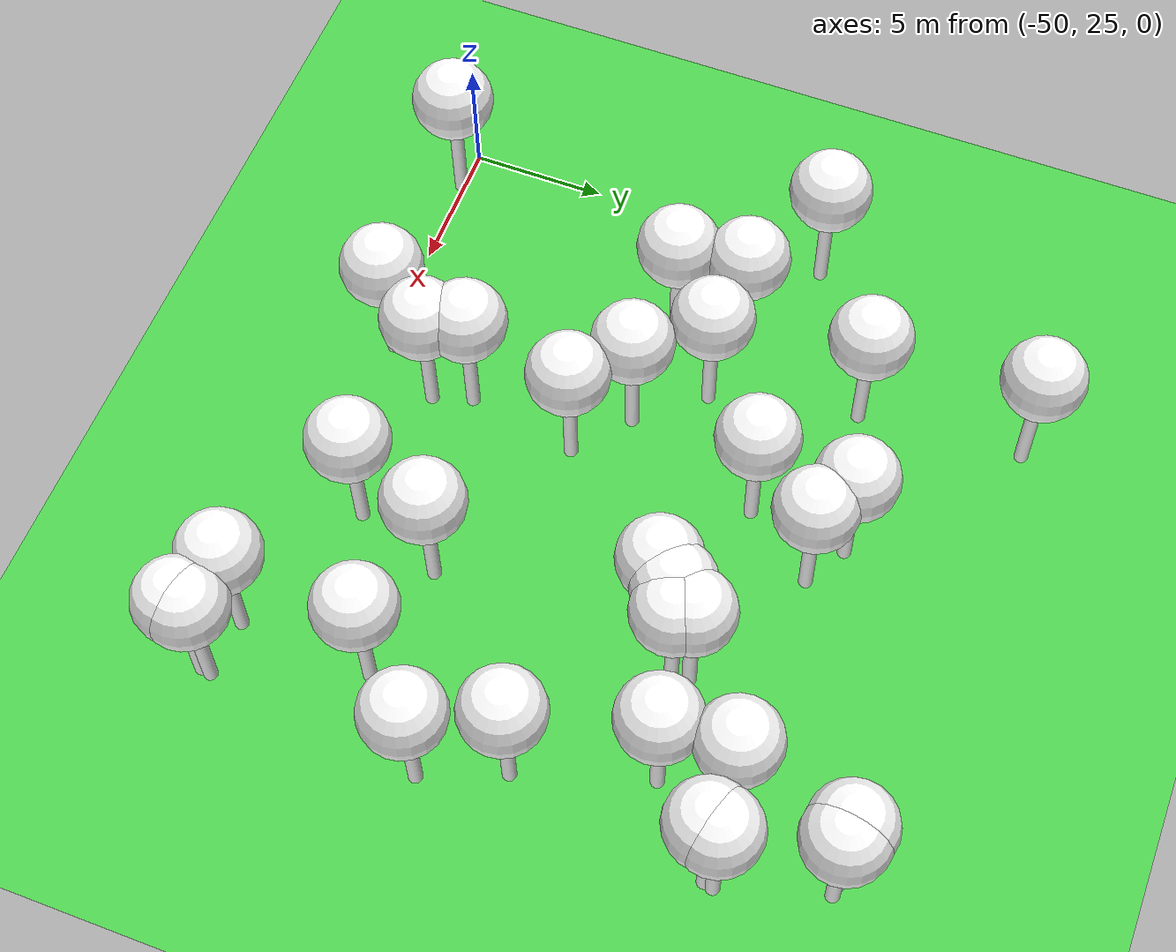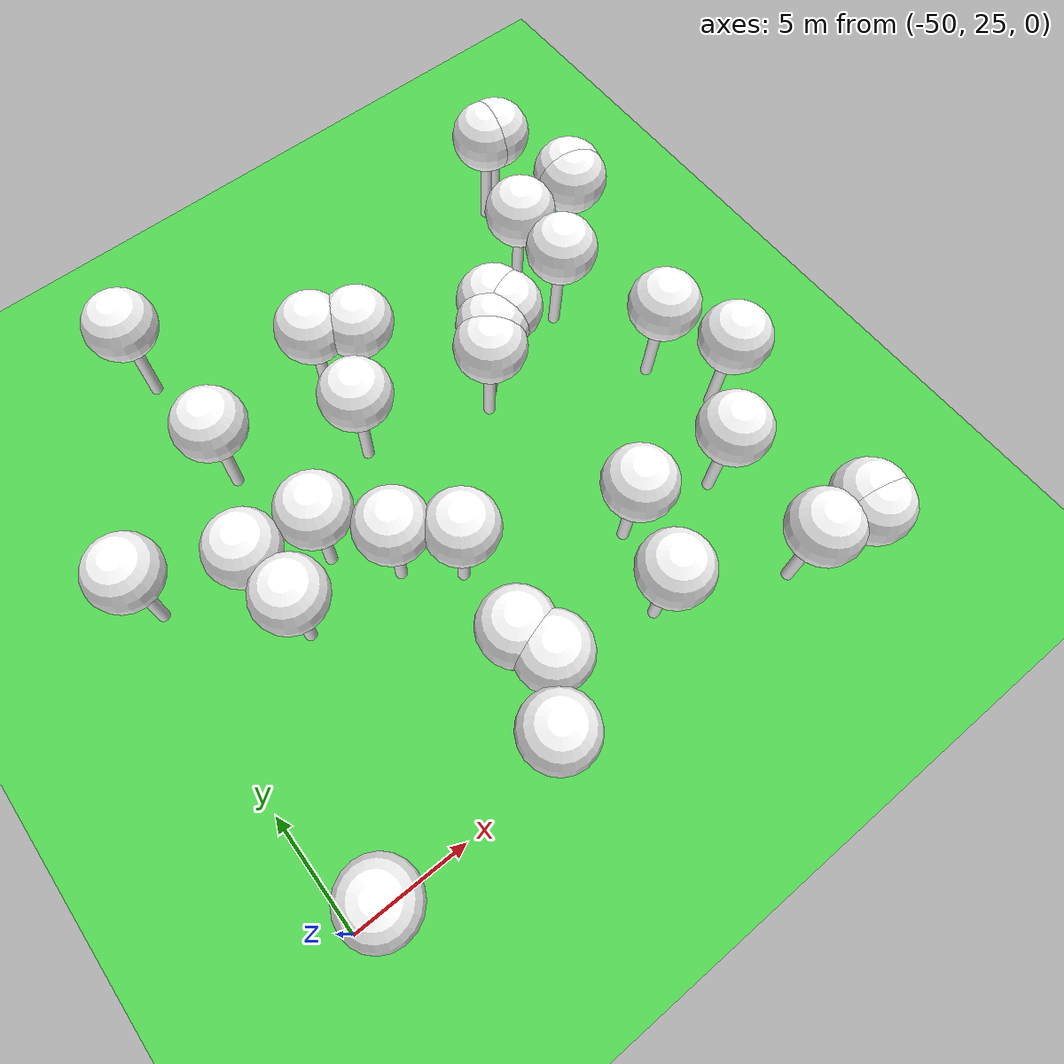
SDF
<sdf version="1.8">
 <world name="forest_world">
  <model name="tree_simple489">
   <static>1</static>
   <link name="link">
    <pose>0 0 0.1 0 -0 0</pose>
    <collision name="collision_trunk">
     <pose>0 0 2 0 -0 0</pose>
     <geometry><cylinder><radius>0.25</radius><length>4</length></cylinder></geometry>
    </collision>
    <collision name="collision_treetop">
     <pose>0 0 5.2 0 -0 0</pose>
     <geometry><sphere><radius>1.5</radius></sphere></geometry>
    </collision>
    <visual name="trunk_489">
     <pose>0 0 2 0 -0 0</pose>
     <geometry><cylinder><radius>0.25</radius><length>4</length></cylinder></geometry>
     <material>
      <ambient>0.5 0.5 0.5 1</ambient>
      <diffuse>1.0 1.0 1.0 1</diffuse>
      <specular>0.0 0.0 0.0 1</specular>
      <pbr>
       <metal>
        <albedo_map>file://textures/tree_simple_trunk.jpg</albedo_map>
        <metalness>0.0</metalness>
        <roughness>0.8</roughness>
       </metal>
      </pbr>
     </material>
    </visual>
    <visual name="treetop_489">
     <pose>0 0 5.2 0 -0 0</pose>
     <geometry><sphere><radius>1.5</radius></sphere></geometry>
     <material>
      <ambient>0.5 0.5 0.5 1</ambient>
      <diffuse>1.0 1.0 1.0 1</diffuse>
      <specular>0.0 0.0 0.0 1</specular>
      <pbr>
       <metal>
        <albedo_map>file://textures/tree_simple_treetop.jpg</albedo_map>
        <metalness>0.0</metalness>
        <roughness>0.9</roughness>
       </metal>
      </pbr>
     </material>
    </visual>
   </link>
   <pose>-32.6634579524 39.3278172931 0 0 -0 0</pose>
  </model>
  <model name="tree_simple482">
   <static>1</static>
   <link name="link">
    <pose>0 0 0.1 0 -0 0</pose>
    <collision name="collision_trunk">
     <pose>0 0 2 0 -0 0</pose>
     <geometry><cylinder><radius>0.25</radius><length>4</length></cylinder></geometry>
    </collision>
    <collision name="collision_treetop">
     <pose>0 0 5.2 0 -0 0</pose>
     <geometry><sphere><radius>1.5</radius></sphere></geometry>
    </collision>
    <visual name="trunk_482">
     <pose>0 0 2 0 -0 0</pose>
     <geometry><cylinder><radius>0.25</radius><length>4</length></cylinder></geometry>
     <material>
      <ambient>0.5 0.5 0.5 1</ambient>
      <diffuse>1.0 1.0 1.0 1</diffuse>
      <specular>0.0 0.0 0.0 1</specular>
      <pbr>
       <metal>
        <albedo_map>file://textures/tree_simple_trunk.jpg</albedo_map>
        <metalness>0.0</metalness>
        <roughness>0.8</roughness>
       </metal>
      </pbr>
     </material>
    </visual>
    <visual name="treetop_482">
     <pose>0 0 5.2 0 -0 0</pose>
     <geometry><sphere><radius>1.5</radius></sphere></geometry>
     <material>
      <ambient>0.5 0.5 0.5 1</ambient>
      <diffuse>1.0 1.0 1.0 1</diffuse>
      <specular>0.0 0.0 0.0 1</specular>
      <pbr>
       <metal>
        <albedo_map>file://textures/tree_simple_treetop.jpg</albedo_map>
        <metalness>0.0</metalness>
        <roughness>0.9</roughness>
       </metal>
      </pbr>
     </material>
    </visual>
   </link>
   <pose>-31.7137183406 39.6850484597 0 0 -0 0</pose>
  </model>
  <model name="tree_simple474">
   <static>1</static>
   <link name="link">
    <pose>0 0 0.1 0 -0 0</pose>
    <collision name="collision_trunk">
     <pose>0 0 2 0 -0 0</pose>
     <geometry><cylinder><radius>0.25</radius><length>4</length></cylinder></geometry>
    </collision>
    <collision name="collision_treetop">
     <pose>0 0 5.2 0 -0 0</pose>
     <geometry><sphere><radius>1.5</radius></sphere></geometry>
    </collision>
    <visual name="trunk_474">
     <pose>0 0 2 0 -0 0</pose>
     <geometry><cylinder><radius>0.25</radius><length>4</length></cylinder></geometry>
     <material>
      <ambient>0.5 0.5 0.5 1</ambient>
      <diffuse>1.0 1.0 1.0 1</diffuse>
      <specular>0.0 0.0 0.0 1</specular>
      <pbr>
       <metal>
        <albedo_map>file://textures/tree_simple_trunk.jpg</albedo_map>
        <metalness>0.0</metalness>
        <roughness>0.8</roughness>
       </metal>
      </pbr>
     </material>
    </visual>
    <visual name="treetop_474">
     <pose>0 0 5.2 0 -0 0</pose>
     <geometry><sphere><radius>1.5</radius></sphere></geometry>
     <material>
      <ambient>0.5 0.5 0.5 1</ambient>
      <diffuse>1.0 1.0 1.0 1</diffuse>
      <specular>0.0 0.0 0.0 1</specular>
      <pbr>
       <metal>
        <albedo_map>file://textures/tree_simple_treetop.jpg</albedo_map>
        <metalness>0.0</metalness>
        <roughness>0.9</roughness>
       </metal>
      </pbr>
     </material>
    </visual>
   </link>
   <pose>-45.5609359524 37.3889677829 0 0 -0 0</pose>
  </model>
  <model name="tree_simple462">
   <static>1</static>
   <link name="link">
    <pose>0 0 0.1 0 -0 0</pose>
    <collision name="collision_trunk">
     <pose>0 0 2 0 -0 0</pose>
     <geometry><cylinder><radius>0.25</radius><length>4</length></cylinder></geometry>
    </collision>
    <collision name="collision_treetop">
     <pose>0 0 5.2 0 -0 0</pose>
     <geometry><sphere><radius>1.5</radius></sphere></geometry>
    </collision>
    <visual name="trunk_462">
     <pose>0 0 2 0 -0 0</pose>
     <geometry><cylinder><radius>0.25</radius><length>4</length></cylinder></geometry>
     <material>
      <ambient>0.5 0.5 0.5 1</ambient>
      <diffuse>1.0 1.0 1.0 1</diffuse>
      <specular>0.0 0.0 0.0 1</specular>
      <pbr>
       <metal>
        <albedo_map>file://textures/tree_simple_trunk.jpg</albedo_map>
        <metalness>0.0</metalness>
        <roughness>0.8</roughness>
       </metal>
      </pbr>
     </material>
    </visual>
    <visual name="treetop_462">
     <pose>0 0 5.2 0 -0 0</pose>
     <geometry><sphere><radius>1.5</radius></sphere></geometry>
     <material>
      <ambient>0.5 0.5 0.5 1</ambient>
      <diffuse>1.0 1.0 1.0 1</diffuse>
      <specular>0.0 0.0 0.0 1</specular>
      <pbr>
       <metal>
        <albedo_map>file://textures/tree_simple_treetop.jpg</albedo_map>
        <metalness>0.0</metalness>
        <roughness>0.9</roughness>
       </metal>
      </pbr>
     </material>
    </visual>
   </link>
   <pose>-33.3479265171 38.6010387018 0 0 -0 0</pose>
  </model>
  <model name="tree_simple441">
   <static>1</static>
   <link name="link">
    <pose>0 0 0.1 0 -0 0</pose>
    <collision name="collision_trunk">
     <pose>0 0 2 0 -0 0</pose>
     <geometry><cylinder><radius>0.25</radius><length>4</length></cylinder></geometry>
    </collision>
    <collision name="collision_treetop">
     <pose>0 0 5.2 0 -0 0</pose>
     <geometry><sphere><radius>1.5</radius></sphere></geometry>
    </collision>
    <visual name="trunk_441">
     <pose>0 0 2 0 -0 0</pose>
     <geometry><cylinder><radius>0.25</radius><length>4</length></cylinder></geometry>
     <material>
      <ambient>0.5 0.5 0.5 1</ambient>
      <diffuse>1.0 1.0 1.0 1</diffuse>
      <specular>0.0 0.0 0.0 1</specular>
      <pbr>
       <metal>
        <albedo_map>file://textures/tree_simple_trunk.jpg</albedo_map>
        <metalness>0.0</metalness>
        <roughness>0.8</roughness>
       </metal>
      </pbr>
     </material>
    </visual>
    <visual name="treetop_441">
     <pose>0 0 5.2 0 -0 0</pose>
     <geometry><sphere><radius>1.5</radius></sphere></geometry>
     <material>
      <ambient>0.5 0.5 0.5 1</ambient>
      <diffuse>1.0 1.0 1.0 1</diffuse>
      <specular>0.0 0.0 0.0 1</specular>
      <pbr>
       <metal>
        <albedo_map>file://textures/tree_simple_treetop.jpg</albedo_map>
        <metalness>0.0</metalness>
        <roughness>0.9</roughness>
       </metal>
      </pbr>
     </material>
    </visual>
   </link>
   <pose>-25.4258718868 33.0017159702 0 0 -0 0</pose>
  </model>
  <model name="tree_simple410">
   <static>1</static>
   <link name="link">
    <pose>0 0 0.1 0 -0 0</pose>
    <collision name="collision_trunk">
     <pose>0 0 2 0 -0 0</pose>
     <geometry><cylinder><radius>0.25</radius><length>4</length></cylinder></geometry>
    </collision>
    <collision name="collision_treetop">
     <pose>0 0 5.2 0 -0 0</pose>
     <geometry><sphere><radius>1.5</radius></sphere></geometry>
    </collision>
    <visual name="trunk_410">
     <pose>0 0 2 0 -0 0</pose>
     <geometry><cylinder><radius>0.25</radius><length>4</length></cylinder></geometry>
     <material>
      <ambient>0.5 0.5 0.5 1</ambient>
      <diffuse>1.0 1.0 1.0 1</diffuse>
      <specular>0.0 0.0 0.0 1</specular>
      <pbr>
       <metal>
        <albedo_map>file://textures/tree_simple_trunk.jpg</albedo_map>
        <metalness>0.0</metalness>
        <roughness>0.8</roughness>
       </metal>
      </pbr>
     </material>
    </visual>
    <visual name="treetop_410">
     <pose>0 0 5.2 0 -0 0</pose>
     <geometry><sphere><radius>1.5</radius></sphere></geometry>
     <material>
      <ambient>0.5 0.5 0.5 1</ambient>
      <diffuse>1.0 1.0 1.0 1</diffuse>
      <specular>0.0 0.0 0.0 1</specular>
      <pbr>
       <metal>
        <albedo_map>file://textures/tree_simple_treetop.jpg</albedo_map>
        <metalness>0.0</metalness>
        <roughness>0.9</roughness>
       </metal>
      </pbr>
     </material>
    </visual>
   </link>
   <pose>-31.9347087499 40.2537422087 0 0 -0 0</pose>
  </model>
  <model name="tree_simple358">
   <static>1</static>
   <link name="link">
    <pose>0 0 0.1 0 -0 0</pose>
    <collision name="collision_trunk">
     <pose>0 0 2 0 -0 0</pose>
     <geometry><cylinder><radius>0.25</radius><length>4</length></cylinder></geometry>
    </collision>
    <collision name="collision_treetop">
     <pose>0 0 5.2 0 -0 0</pose>
     <geometry><sphere><radius>1.5</radius></sphere></geometry>
    </collision>
    <visual name="trunk_358">
     <pose>0 0 2 0 -0 0</pose>
     <geometry><cylinder><radius>0.25</radius><length>4</length></cylinder></geometry>
     <material>
      <ambient>0.5 0.5 0.5 1</ambient>
      <diffuse>1.0 1.0 1.0 1</diffuse>
      <specular>0.0 0.0 0.0 1</specular>
      <pbr>
       <metal>
        <albedo_map>file://textures/tree_simple_trunk.jpg</albedo_map>
        <metalness>0.0</metalness>
        <roughness>0.8</roughness>
       </metal>
      </pbr>
     </material>
    </visual>
    <visual name="treetop_358">
     <pose>0 0 5.2 0 -0 0</pose>
     <geometry><sphere><radius>1.5</radius></sphere></geometry>
     <material>
      <ambient>0.5 0.5 0.5 1</ambient>
      <diffuse>1.0 1.0 1.0 1</diffuse>
      <specular>0.0 0.0 0.0 1</specular>
      <pbr>
       <metal>
        <albedo_map>file://textures/tree_simple_treetop.jpg</albedo_map>
        <metalness>0.0</metalness>
        <roughness>0.9</roughness>
       </metal>
      </pbr>
     </material>
    </visual>
   </link>
   <pose>-28.1059387966 40.529489556 0 0 -0 0</pose>
  </model>
  <model name="tree_simple351">
   <static>1</static>
   <link name="link">
    <pose>0 0 0.1 0 -0 0</pose>
    <collision name="collision_trunk">
     <pose>0 0 2 0 -0 0</pose>
     <geometry><cylinder><radius>0.25</radius><length>4</length></cylinder></geometry>
    </collision>
    <collision name="collision_treetop">
     <pose>0 0 5.2 0 -0 0</pose>
     <geometry><sphere><radius>1.5</radius></sphere></geometry>
    </collision>
    <visual name="trunk_351">
     <pose>0 0 2 0 -0 0</pose>
     <geometry><cylinder><radius>0.25</radius><length>4</length></cylinder></geometry>
     <material>
      <ambient>0.5 0.5 0.5 1</ambient>
      <diffuse>1.0 1.0 1.0 1</diffuse>
      <specular>0.0 0.0 0.0 1</specular>
      <pbr>
       <metal>
        <albedo_map>file://textures/tree_simple_trunk.jpg</albedo_map>
        <metalness>0.0</metalness>
        <roughness>0.8</roughness>
       </metal>
      </pbr>
     </material>
    </visual>
    <visual name="treetop_351">
     <pose>0 0 5.2 0 -0 0</pose>
     <geometry><sphere><radius>1.5</radius></sphere></geometry>
     <material>
      <ambient>0.5 0.5 0.5 1</ambient>
      <diffuse>1.0 1.0 1.0 1</diffuse>
      <specular>0.0 0.0 0.0 1</specular>
      <pbr>
       <metal>
        <albedo_map>file://textures/tree_simple_treetop.jpg</albedo_map>
        <metalness>0.0</metalness>
        <roughness>0.9</roughness>
       </metal>
      </pbr>
     </material>
    </visual>
   </link>
   <pose>-28.4628783032 25.1782097003 0 0 -0 0</pose>
  </model>
  <model name="tree_simple336">
   <static>1</static>
   <link name="link">
    <pose>0 0 0.1 0 -0 0</pose>
    <collision name="collision_trunk">
     <pose>0 0 2 0 -0 0</pose>
     <geometry><cylinder><radius>0.25</radius><length>4</length></cylinder></geometry>
    </collision>
    <collision name="collision_treetop">
     <pose>0 0 5.2 0 -0 0</pose>
     <geometry><sphere><radius>1.5</radius></sphere></geometry>
    </collision>
    <visual name="trunk_336">
     <pose>0 0 2 0 -0 0</pose>
     <geometry><cylinder><radius>0.25</radius><length>4</length></cylinder></geometry>
     <material>
      <ambient>0.5 0.5 0.5 1</ambient>
      <diffuse>1.0 1.0 1.0 1</diffuse>
      <specular>0.0 0.0 0.0 1</specular>
      <pbr>
       <metal>
        <albedo_map>file://textures/tree_simple_trunk.jpg</albedo_map>
        <metalness>0.0</metalness>
        <roughness>0.8</roughness>
       </metal>
      </pbr>
     </material>
    </visual>
    <visual name="treetop_336">
     <pose>0 0 5.2 0 -0 0</pose>
     <geometry><sphere><radius>1.5</radius></sphere></geometry>
     <material>
      <ambient>0.5 0.5 0.5 1</ambient>
      <diffuse>1.0 1.0 1.0 1</diffuse>
      <specular>0.0 0.0 0.0 1</specular>
      <pbr>
       <metal>
        <albedo_map>file://textures/tree_simple_treetop.jpg</albedo_map>
        <metalness>0.0</metalness>
        <roughness>0.9</roughness>
       </metal>
      </pbr>
     </material>
    </visual>
   </link>
   <pose>-43.9020074738 42.4187815875 0 0 -0 0</pose>
  </model>
  <model name="tree_simple331">
   <static>1</static>
   <link name="link">
    <pose>0 0 0.1 0 -0 0</pose>
    <collision name="collision_trunk">
     <pose>0 0 2 0 -0 0</pose>
     <geometry><cylinder><radius>0.25</radius><length>4</length></cylinder></geometry>
    </collision>
    <collision name="collision_treetop">
     <pose>0 0 5.2 0 -0 0</pose>
     <geometry><sphere><radius>1.5</radius></sphere></geometry>
    </collision>
    <visual name="trunk_331">
     <pose>0 0 2 0 -0 0</pose>
     <geometry><cylinder><radius>0.25</radius><length>4</length></cylinder></geometry>
     <material>
      <ambient>0.5 0.5 0.5 1</ambient>
      <diffuse>1.0 1.0 1.0 1</diffuse>
      <specular>0.0 0.0 0.0 1</specular>
      <pbr>
       <metal>
        <albedo_map>file://textures/tree_simple_trunk.jpg</albedo_map>
        <metalness>0.0</metalness>
        <roughness>0.8</roughness>
       </metal>
      </pbr>
     </material>
    </visual>
    <visual name="treetop_331">
     <pose>0 0 5.2 0 -0 0</pose>
     <geometry><sphere><radius>1.5</radius></sphere></geometry>
     <material>
      <ambient>0.5 0.5 0.5 1</ambient>
      <diffuse>1.0 1.0 1.0 1</diffuse>
      <specular>0.0 0.0 0.0 1</specular>
      <pbr>
       <metal>
        <albedo_map>file://textures/tree_simple_treetop.jpg</albedo_map>
        <metalness>0.0</metalness>
        <roughness>0.9</roughness>
       </metal>
      </pbr>
     </material>
    </visual>
   </link>
   <pose>-40.8341940448 34.8238319948 0 0 -0 0</pose>
  </model>
  <model name="tree_simple319">
   <static>1</static>
   <link name="link">
    <pose>0 0 0.1 0 -0 0</pose>
    <collision name="collision_trunk">
     <pose>0 0 2 0 -0 0</pose>
     <geometry><cylinder><radius>0.25</radius><length>4</length></cylinder></geometry>
    </collision>
    <collision name="collision_treetop">
     <pose>0 0 5.2 0 -0 0</pose>
     <geometry><sphere><radius>1.5</radius></sphere></geometry>
    </collision>
    <visual name="trunk_319">
     <pose>0 0 2 0 -0 0</pose>
     <geometry><cylinder><radius>0.25</radius><length>4</length></cylinder></geometry>
     <material>
      <ambient>0.5 0.5 0.5 1</ambient>
      <diffuse>1.0 1.0 1.0 1</diffuse>
      <specular>0.0 0.0 0.0 1</specular>
      <pbr>
       <metal>
        <albedo_map>file://textures/tree_simple_trunk.jpg</albedo_map>
        <metalness>0.0</metalness>
        <roughness>0.8</roughness>
       </metal>
      </pbr>
     </material>
    </visual>
    <visual name="treetop_319">
     <pose>0 0 5.2 0 -0 0</pose>
     <geometry><sphere><radius>1.5</radius></sphere></geometry>
     <material>
      <ambient>0.5 0.5 0.5 1</ambient>
      <diffuse>1.0 1.0 1.0 1</diffuse>
      <specular>0.0 0.0 0.0 1</specular>
      <pbr>
       <metal>
        <albedo_map>file://textures/tree_simple_treetop.jpg</albedo_map>
        <metalness>0.0</metalness>
        <roughness>0.9</roughness>
       </metal>
      </pbr>
     </material>
    </visual>
   </link>
   <pose>-33.8227496689 27.309967617 0 0 -0 0</pose>
  </model>
  <model name="tree_simple311">
   <static>1</static>
   <link name="link">
    <pose>0 0 0.1 0 -0 0</pose>
    <collision name="collision_trunk">
     <pose>0 0 2 0 -0 0</pose>
     <geometry><cylinder><radius>0.25</radius><length>4</length></cylinder></geometry>
    </collision>
    <collision name="collision_treetop">
     <pose>0 0 5.2 0 -0 0</pose>
     <geometry><sphere><radius>1.5</radius></sphere></geometry>
    </collision>
    <visual name="trunk_311">
     <pose>0 0 2 0 -0 0</pose>
     <geometry><cylinder><radius>0.25</radius><length>4</length></cylinder></geometry>
     <material>
      <ambient>0.5 0.5 0.5 1</ambient>
      <diffuse>1.0 1.0 1.0 1</diffuse>
      <specular>0.0 0.0 0.0 1</specular>
      <pbr>
       <metal>
        <albedo_map>file://textures/tree_simple_trunk.jpg</albedo_map>
        <metalness>0.0</metalness>
        <roughness>0.8</roughness>
       </metal>
      </pbr>
     </material>
    </visual>
    <visual name="treetop_311">
     <pose>0 0 5.2 0 -0 0</pose>
     <geometry><sphere><radius>1.5</radius></sphere></geometry>
     <material>
      <ambient>0.5 0.5 0.5 1</ambient>
      <diffuse>1.0 1.0 1.0 1</diffuse>
      <specular>0.0 0.0 0.0 1</specular>
      <pbr>
       <metal>
        <albedo_map>file://textures/tree_simple_treetop.jpg</albedo_map>
        <metalness>0.0</metalness>
        <roughness>0.9</roughness>
       </metal>
      </pbr>
     </material>
    </visual>
   </link>
   <pose>-49.3857645653 39.1709388153 0 0 -0 0</pose>
  </model>
  <model name="tree_simple307">
   <static>1</static>
   <link name="link">
    <pose>0 0 0.1 0 -0 0</pose>
    <collision name="collision_trunk">
     <pose>0 0 2 0 -0 0</pose>
     <geometry><cylinder><radius>0.25</radius><length>4</length></cylinder></geometry>
    </collision>
    <collision name="collision_treetop">
     <pose>0 0 5.2 0 -0 0</pose>
     <geometry><sphere><radius>1.5</radius></sphere></geometry>
    </collision>
    <visual name="trunk_307">
     <pose>0 0 2 0 -0 0</pose>
     <geometry><cylinder><radius>0.25</radius><length>4</length></cylinder></geometry>
     <material>
      <ambient>0.5 0.5 0.5 1</ambient>
      <diffuse>1.0 1.0 1.0 1</diffuse>
      <specular>0.0 0.0 0.0 1</specular>
      <pbr>
       <metal>
        <albedo_map>file://textures/tree_simple_trunk.jpg</albedo_map>
        <metalness>0.0</metalness>
        <roughness>0.8</roughness>
       </metal>
      </pbr>
     </material>
    </visual>
    <visual name="treetop_307">
     <pose>0 0 5.2 0 -0 0</pose>
     <geometry><sphere><radius>1.5</radius></sphere></geometry>
     <material>
      <ambient>0.5 0.5 0.5 1</ambient>
      <diffuse>1.0 1.0 1.0 1</diffuse>
      <specular>0.0 0.0 0.0 1</specular>
      <pbr>
       <metal>
        <albedo_map>file://textures/tree_simple_treetop.jpg</albedo_map>
        <metalness>0.0</metalness>
        <roughness>0.9</roughness>
       </metal>
      </pbr>
     </material>
    </visual>
   </link>
   <pose>-25.3992623196 43.1282745175 0 0 -0 0</pose>
  </model>
  <model name="tree_simple291">
   <static>1</static>
   <link name="link">
    <pose>0 0 0.1 0 -0 0</pose>
    <collision name="collision_trunk">
     <pose>0 0 2 0 -0 0</pose>
     <geometry><cylinder><radius>0.25</radius><length>4</length></cylinder></geometry>
    </collision>
    <collision name="collision_treetop">
     <pose>0 0 5.2 0 -0 0</pose>
     <geometry><sphere><radius>1.5</radius></sphere></geometry>
    </collision>
    <visual name="trunk_291">
     <pose>0 0 2 0 -0 0</pose>
     <geometry><cylinder><radius>0.25</radius><length>4</length></cylinder></geometry>
     <material>
      <ambient>0.5 0.5 0.5 1</ambient>
      <diffuse>1.0 1.0 1.0 1</diffuse>
      <specular>0.0 0.0 0.0 1</specular>
      <pbr>
       <metal>
        <albedo_map>file://textures/tree_simple_trunk.jpg</albedo_map>
        <metalness>0.0</metalness>
        <roughness>0.8</roughness>
       </metal>
      </pbr>
     </material>
    </visual>
    <visual name="treetop_291">
     <pose>0 0 5.2 0 -0 0</pose>
     <geometry><sphere><radius>1.5</radius></sphere></geometry>
     <material>
      <ambient>0.5 0.5 0.5 1</ambient>
      <diffuse>1.0 1.0 1.0 1</diffuse>
      <specular>0.0 0.0 0.0 1</specular>
      <pbr>
       <metal>
        <albedo_map>file://textures/tree_simple_treetop.jpg</albedo_map>
        <metalness>0.0</metalness>
        <roughness>0.9</roughness>
       </metal>
      </pbr>
     </material>
    </visual>
   </link>
   <pose>-38.780558868 40.0860126223 0 0 -0 0</pose>
  </model>
  <model name="tree_simple286">
   <static>1</static>
   <link name="link">
    <pose>0 0 0.1 0 -0 0</pose>
    <collision name="collision_trunk">
     <pose>0 0 2 0 -0 0</pose>
     <geometry><cylinder><radius>0.25</radius><length>4</length></cylinder></geometry>
    </collision>
    <collision name="collision_treetop">
     <pose>0 0 5.2 0 -0 0</pose>
     <geometry><sphere><radius>1.5</radius></sphere></geometry>
    </collision>
    <visual name="trunk_286">
     <pose>0 0 2 0 -0 0</pose>
     <geometry><cylinder><radius>0.25</radius><length>4</length></cylinder></geometry>
     <material>
      <ambient>0.5 0.5 0.5 1</ambient>
      <diffuse>1.0 1.0 1.0 1</diffuse>
      <specular>0.0 0.0 0.0 1</specular>
      <pbr>
       <metal>
        <albedo_map>file://textures/tree_simple_trunk.jpg</albedo_map>
        <metalness>0.0</metalness>
        <roughness>0.8</roughness>
       </metal>
      </pbr>
     </material>
    </visual>
    <visual name="treetop_286">
     <pose>0 0 5.2 0 -0 0</pose>
     <geometry><sphere><radius>1.5</radius></sphere></geometry>
     <material>
      <ambient>0.5 0.5 0.5 1</ambient>
      <diffuse>1.0 1.0 1.0 1</diffuse>
      <specular>0.0 0.0 0.0 1</specular>
      <pbr>
       <metal>
        <albedo_map>file://textures/tree_simple_treetop.jpg</albedo_map>
        <metalness>0.0</metalness>
        <roughness>0.9</roughness>
       </metal>
      </pbr>
     </material>
    </visual>
   </link>
   <pose>-48.4343960976 24.9011596552 0 0 -0 0</pose>
  </model>
  <model name="tree_simple264">
   <static>1</static>
   <link name="link">
    <pose>0 0 0.1 0 -0 0</pose>
    <collision name="collision_trunk">
     <pose>0 0 2 0 -0 0</pose>
     <geometry><cylinder><radius>0.25</radius><length>4</length></cylinder></geometry>
    </collision>
    <collision name="collision_treetop">
     <pose>0 0 5.2 0 -0 0</pose>
     <geometry><sphere><radius>1.5</radius></sphere></geometry>
    </collision>
    <visual name="trunk_264">
     <pose>0 0 2 0 -0 0</pose>
     <geometry><cylinder><radius>0.25</radius><length>4</length></cylinder></geometry>
     <material>
      <ambient>0.5 0.5 0.5 1</ambient>
      <diffuse>1.0 1.0 1.0 1</diffuse>
      <specular>0.0 0.0 0.0 1</specular>
      <pbr>
       <metal>
        <albedo_map>file://textures/tree_simple_trunk.jpg</albedo_map>
        <metalness>0.0</metalness>
        <roughness>0.8</roughness>
       </metal>
      </pbr>
     </material>
    </visual>
    <visual name="treetop_264">
     <pose>0 0 5.2 0 -0 0</pose>
     <geometry><sphere><radius>1.5</radius></sphere></geometry>
     <material>
      <ambient>0.5 0.5 0.5 1</ambient>
      <diffuse>1.0 1.0 1.0 1</diffuse>
      <specular>0.0 0.0 0.0 1</specular>
      <pbr>
       <metal>
        <albedo_map>file://textures/tree_simple_treetop.jpg</albedo_map>
        <metalness>0.0</metalness>
        <roughness>0.9</roughness>
       </metal>
      </pbr>
     </material>
    </visual>
   </link>
   <pose>-26.5960769864 35.8751081016 0 0 -0 0</pose>
  </model>
  <model name="tree_simple256">
   <static>1</static>
   <link name="link">
    <pose>0 0 0.1 0 -0 0</pose>
    <collision name="collision_trunk">
     <pose>0 0 2 0 -0 0</pose>
     <geometry><cylinder><radius>0.25</radius><length>4</length></cylinder></geometry>
    </collision>
    <collision name="collision_treetop">
     <pose>0 0 5.2 0 -0 0</pose>
     <geometry><sphere><radius>1.5</radius></sphere></geometry>
    </collision>
    <visual name="trunk_256">
     <pose>0 0 2 0 -0 0</pose>
     <geometry><cylinder><radius>0.25</radius><length>4</length></cylinder></geometry>
     <material>
      <ambient>0.5 0.5 0.5 1</ambient>
      <diffuse>1.0 1.0 1.0 1</diffuse>
      <specular>0.0 0.0 0.0 1</specular>
      <pbr>
       <metal>
        <albedo_map>file://textures/tree_simple_trunk.jpg</albedo_map>
        <metalness>0.0</metalness>
        <roughness>0.8</roughness>
       </metal>
      </pbr>
     </material>
    </visual>
    <visual name="treetop_256">
     <pose>0 0 5.2 0 -0 0</pose>
     <geometry><sphere><radius>1.5</radius></sphere></geometry>
     <material>
      <ambient>0.5 0.5 0.5 1</ambient>
      <diffuse>1.0 1.0 1.0 1</diffuse>
      <specular>0.0 0.0 0.0 1</specular>
      <pbr>
       <metal>
        <albedo_map>file://textures/tree_simple_treetop.jpg</albedo_map>
        <metalness>0.0</metalness>
        <roughness>0.9</roughness>
       </metal>
      </pbr>
     </material>
    </visual>
   </link>
   <pose>-38.4325558623 43.6568851864 0 0 -0 0</pose>
  </model>
  <model name="tree_simple247">
   <static>1</static>
   <link name="link">
    <pose>0 0 0.1 0 -0 0</pose>
    <collision name="collision_trunk">
     <pose>0 0 2 0 -0 0</pose>
     <geometry><cylinder><radius>0.25</radius><length>4</length></cylinder></geometry>
    </collision>
    <collision name="collision_treetop">
     <pose>0 0 5.2 0 -0 0</pose>
     <geometry><sphere><radius>1.5</radius></sphere></geometry>
    </collision>
    <visual name="trunk_247">
     <pose>0 0 2 0 -0 0</pose>
     <geometry><cylinder><radius>0.25</radius><length>4</length></cylinder></geometry>
     <material>
      <ambient>0.5 0.5 0.5 1</ambient>
      <diffuse>1.0 1.0 1.0 1</diffuse>
      <specular>0.0 0.0 0.0 1</specular>
      <pbr>
       <metal>
        <albedo_map>file://textures/tree_simple_trunk.jpg</albedo_map>
        <metalness>0.0</metalness>
        <roughness>0.8</roughness>
       </metal>
      </pbr>
     </material>
    </visual>
    <visual name="treetop_247">
     <pose>0 0 5.2 0 -0 0</pose>
     <geometry><sphere><radius>1.5</radius></sphere></geometry>
     <material>
      <ambient>0.5 0.5 0.5 1</ambient>
      <diffuse>1.0 1.0 1.0 1</diffuse>
      <specular>0.0 0.0 0.0 1</specular>
      <pbr>
       <metal>
        <albedo_map>file://textures/tree_simple_treetop.jpg</albedo_map>
        <metalness>0.0</metalness>
        <roughness>0.9</roughness>
       </metal>
      </pbr>
     </material>
    </visual>
   </link>
   <pose>-44.3832388131 48.3955182604 0 0 -0 0</pose>
  </model>
  <model name="tree_simple236">
   <static>1</static>
   <link name="link">
    <pose>0 0 0.1 0 -0 0</pose>
    <collision name="collision_trunk">
     <pose>0 0 2 0 -0 0</pose>
     <geometry><cylinder><radius>0.25</radius><length>4</length></cylinder></geometry>
    </collision>
    <collision name="collision_treetop">
     <pose>0 0 5.2 0 -0 0</pose>
     <geometry><sphere><radius>1.5</radius></sphere></geometry>
    </collision>
    <visual name="trunk_236">
     <pose>0 0 2 0 -0 0</pose>
     <geometry><cylinder><radius>0.25</radius><length>4</length></cylinder></geometry>
     <material>
      <ambient>0.5 0.5 0.5 1</ambient>
      <diffuse>1.0 1.0 1.0 1</diffuse>
      <specular>0.0 0.0 0.0 1</specular>
      <pbr>
       <metal>
        <albedo_map>file://textures/tree_simple_trunk.jpg</albedo_map>
        <metalness>0.0</metalness>
        <roughness>0.8</roughness>
       </metal>
      </pbr>
     </material>
    </visual>
    <visual name="treetop_236">
     <pose>0 0 5.2 0 -0 0</pose>
     <geometry><sphere><radius>1.5</radius></sphere></geometry>
     <material>
      <ambient>0.5 0.5 0.5 1</ambient>
      <diffuse>1.0 1.0 1.0 1</diffuse>
      <specular>0.0 0.0 0.0 1</specular>
      <pbr>
       <metal>
        <albedo_map>file://textures/tree_simple_treetop.jpg</albedo_map>
        <metalness>0.0</metalness>
        <roughness>0.9</roughness>
       </metal>
      </pbr>
     </material>
    </visual>
   </link>
   <pose>-28.2556560036 43.088579588 0 0 -0 0</pose>
  </model>
  <model name="tree_simple224">
   <static>1</static>
   <link name="link">
    <pose>0 0 0.1 0 -0 0</pose>
    <collision name="collision_trunk">
     <pose>0 0 2 0 -0 0</pose>
     <geometry><cylinder><radius>0.25</radius><length>4</length></cylinder></geometry>
    </collision>
    <collision name="collision_treetop">
     <pose>0 0 5.2 0 -0 0</pose>
     <geometry><sphere><radius>1.5</radius></sphere></geometry>
    </collision>
    <visual name="trunk_224">
     <pose>0 0 2 0 -0 0</pose>
     <geometry><cylinder><radius>0.25</radius><length>4</length></cylinder></geometry>
     <material>
      <ambient>0.5 0.5 0.5 1</ambient>
      <diffuse>1.0 1.0 1.0 1</diffuse>
      <specular>0.0 0.0 0.0 1</specular>
      <pbr>
       <metal>
        <albedo_map>file://textures/tree_simple_trunk.jpg</albedo_map>
        <metalness>0.0</metalness>
        <roughness>0.8</roughness>
       </metal>
      </pbr>
     </material>
    </visual>
    <visual name="treetop_224">
     <pose>0 0 5.2 0 -0 0</pose>
     <geometry><sphere><radius>1.5</radius></sphere></geometry>
     <material>
      <ambient>0.5 0.5 0.5 1</ambient>
      <diffuse>1.0 1.0 1.0 1</diffuse>
      <specular>0.0 0.0 0.0 1</specular>
      <pbr>
       <metal>
        <albedo_map>file://textures/tree_simple_treetop.jpg</albedo_map>
        <metalness>0.0</metalness>
        <roughness>0.9</roughness>
       </metal>
      </pbr>
     </material>
    </visual>
   </link>
   <pose>-25.303745436 43.465040084 0 0 -0 0</pose>
  </model>
  <model name="tree_simple208">
   <static>1</static>
   <link name="link">
    <pose>0 0 0.1 0 -0 0</pose>
    <collision name="collision_trunk">
     <pose>0 0 2 0 -0 0</pose>
     <geometry><cylinder><radius>0.25</radius><length>4</length></cylinder></geometry>
    </collision>
    <collision name="collision_treetop">
     <pose>0 0 5.2 0 -0 0</pose>
     <geometry><sphere><radius>1.5</radius></sphere></geometry>
    </collision>
    <visual name="trunk_208">
     <pose>0 0 2 0 -0 0</pose>
     <geometry><cylinder><radius>0.25</radius><length>4</length></cylinder></geometry>
     <material>
      <ambient>0.5 0.5 0.5 1</ambient>
      <diffuse>1.0 1.0 1.0 1</diffuse>
      <specular>0.0 0.0 0.0 1</specular>
      <pbr>
       <metal>
        <albedo_map>file://textures/tree_simple_trunk.jpg</albedo_map>
        <metalness>0.0</metalness>
        <roughness>0.8</roughness>
       </metal>
      </pbr>
     </material>
    </visual>
    <visual name="treetop_208">
     <pose>0 0 5.2 0 -0 0</pose>
     <geometry><sphere><radius>1.5</radius></sphere></geometry>
     <material>
      <ambient>0.5 0.5 0.5 1</ambient>
      <diffuse>1.0 1.0 1.0 1</diffuse>
      <specular>0.0 0.0 0.0 1</specular>
      <pbr>
       <metal>
        <albedo_map>file://textures/tree_simple_treetop.jpg</albedo_map>
        <metalness>0.0</metalness>
        <roughness>0.9</roughness>
       </metal>
      </pbr>
     </material>
    </visual>
   </link>
   <pose>-39.1560557195 27.6775865092 0 0 -0 0</pose>
  </model>
  <model name="tree_simple205">
   <static>1</static>
   <link name="link">
    <pose>0 0 0.1 0 -0 0</pose>
    <collision name="collision_trunk">
     <pose>0 0 2 0 -0 0</pose>
     <geometry><cylinder><radius>0.25</radius><length>4</length></cylinder></geometry>
    </collision>
    <collision name="collision_treetop">
     <pose>0 0 5.2 0 -0 0</pose>
     <geometry><sphere><radius>1.5</radius></sphere></geometry>
    </collision>
    <visual name="trunk_205">
     <pose>0 0 2 0 -0 0</pose>
     <geometry><cylinder><radius>0.25</radius><length>4</length></cylinder></geometry>
     <material>
      <ambient>0.5 0.5 0.5 1</ambient>
      <diffuse>1.0 1.0 1.0 1</diffuse>
      <specular>0.0 0.0 0.0 1</specular>
      <pbr>
       <metal>
        <albedo_map>file://textures/tree_simple_trunk.jpg</albedo_map>
        <metalness>0.0</metalness>
        <roughness>0.8</roughness>
       </metal>
      </pbr>
     </material>
    </visual>
    <visual name="treetop_205">
     <pose>0 0 5.2 0 -0 0</pose>
     <geometry><sphere><radius>1.5</radius></sphere></geometry>
     <material>
      <ambient>0.5 0.5 0.5 1</ambient>
      <diffuse>1.0 1.0 1.0 1</diffuse>
      <specular>0.0 0.0 0.0 1</specular>
      <pbr>
       <metal>
        <albedo_map>file://textures/tree_simple_treetop.jpg</albedo_map>
        <metalness>0.0</metalness>
        <roughness>0.9</roughness>
       </metal>
      </pbr>
     </material>
    </visual>
   </link>
   <pose>-28.261168219 30.0880019851 0 0 -0 0</pose>
  </model>
  <model name="tree_simple186">
   <static>1</static>
   <link name="link">
    <pose>0 0 0.1 0 -0 0</pose>
    <collision name="collision_trunk">
     <pose>0 0 2 0 -0 0</pose>
     <geometry><cylinder><radius>0.25</radius><length>4</length></cylinder></geometry>
    </collision>
    <collision name="collision_treetop">
     <pose>0 0 5.2 0 -0 0</pose>
     <geometry><sphere><radius>1.5</radius></sphere></geometry>
    </collision>
    <visual name="trunk_186">
     <pose>0 0 2 0 -0 0</pose>
     <geometry><cylinder><radius>0.25</radius><length>4</length></cylinder></geometry>
     <material>
      <ambient>0.5 0.5 0.5 1</ambient>
      <diffuse>1.0 1.0 1.0 1</diffuse>
      <specular>0.0 0.0 0.0 1</specular>
      <pbr>
       <metal>
        <albedo_map>file://textures/tree_simple_trunk.jpg</albedo_map>
        <metalness>0.0</metalness>
        <roughness>0.8</roughness>
       </metal>
      </pbr>
     </material>
    </visual>
    <visual name="treetop_186">
     <pose>0 0 5.2 0 -0 0</pose>
     <geometry><sphere><radius>1.5</radius></sphere></geometry>
     <material>
      <ambient>0.5 0.5 0.5 1</ambient>
      <diffuse>1.0 1.0 1.0 1</diffuse>
      <specular>0.0 0.0 0.0 1</specular>
      <pbr>
       <metal>
        <albedo_map>file://textures/tree_simple_treetop.jpg</albedo_map>
        <metalness>0.0</metalness>
        <roughness>0.9</roughness>
       </metal>
      </pbr>
     </material>
    </visual>
   </link>
   <pose>-26.4394079644 24.666728782 0 0 -0 0</pose>
  </model>
  <model name="tree_simple174">
   <static>1</static>
   <link name="link">
    <pose>0 0 0.1 0 -0 0</pose>
    <collision name="collision_trunk">
     <pose>0 0 2 0 -0 0</pose>
     <geometry><cylinder><radius>0.25</radius><length>4</length></cylinder></geometry>
    </collision>
    <collision name="collision_treetop">
     <pose>0 0 5.2 0 -0 0</pose>
     <geometry><sphere><radius>1.5</radius></sphere></geometry>
    </collision>
    <visual name="trunk_174">
     <pose>0 0 2 0 -0 0</pose>
     <geometry><cylinder><radius>0.25</radius><length>4</length></cylinder></geometry>
     <material>
      <ambient>0.5 0.5 0.5 1</ambient>
      <diffuse>1.0 1.0 1.0 1</diffuse>
      <specular>0.0 0.0 0.0 1</specular>
      <pbr>
       <metal>
        <albedo_map>file://textures/tree_simple_trunk.jpg</albedo_map>
        <metalness>0.0</metalness>
        <roughness>0.8</roughness>
       </metal>
      </pbr>
     </material>
    </visual>
    <visual name="treetop_174">
     <pose>0 0 5.2 0 -0 0</pose>
     <geometry><sphere><radius>1.5</radius></sphere></geometry>
     <material>
      <ambient>0.5 0.5 0.5 1</ambient>
      <diffuse>1.0 1.0 1.0 1</diffuse>
      <specular>0.0 0.0 0.0 1</specular>
      <pbr>
       <metal>
        <albedo_map>file://textures/tree_simple_treetop.jpg</albedo_map>
        <metalness>0.0</metalness>
        <roughness>0.9</roughness>
       </metal>
      </pbr>
     </material>
    </visual>
   </link>
   <pose>-26.363349587 25.0273342245 0 0 -0 0</pose>
  </model>
  <model name="tree_simple132">
   <static>1</static>
   <link name="link">
    <pose>0 0 0.1 0 -0 0</pose>
    <collision name="collision_trunk">
     <pose>0 0 2 0 -0 0</pose>
     <geometry><cylinder><radius>0.25</radius><length>4</length></cylinder></geometry>
    </collision>
    <collision name="collision_treetop">
     <pose>0 0 5.2 0 -0 0</pose>
     <geometry><sphere><radius>1.5</radius></sphere></geometry>
    </collision>
    <visual name="trunk_132">
     <pose>0 0 2 0 -0 0</pose>
     <geometry><cylinder><radius>0.25</radius><length>4</length></cylinder></geometry>
     <material>
      <ambient>0.5 0.5 0.5 1</ambient>
      <diffuse>1.0 1.0 1.0 1</diffuse>
      <specular>0.0 0.0 0.0 1</specular>
      <pbr>
       <metal>
        <albedo_map>file://textures/tree_simple_trunk.jpg</albedo_map>
        <metalness>0.0</metalness>
        <roughness>0.8</roughness>
       </metal>
      </pbr>
     </material>
    </visual>
    <visual name="treetop_132">
     <pose>0 0 5.2 0 -0 0</pose>
     <geometry><sphere><radius>1.5</radius></sphere></geometry>
     <material>
      <ambient>0.5 0.5 0.5 1</ambient>
      <diffuse>1.0 1.0 1.0 1</diffuse>
      <specular>0.0 0.0 0.0 1</specular>
      <pbr>
       <metal>
        <albedo_map>file://textures/tree_simple_treetop.jpg</albedo_map>
        <metalness>0.0</metalness>
        <roughness>0.9</roughness>
       </metal>
      </pbr>
     </material>
    </visual>
   </link>
   <pose>-26.8565746681 47.2141464963 0 0 -0 0</pose>
  </model>
  <model name="tree_simple112">
   <static>1</static>
   <link name="link">
    <pose>0 0 0.1 0 -0 0</pose>
    <collision name="collision_trunk">
     <pose>0 0 2 0 -0 0</pose>
     <geometry><cylinder><radius>0.25</radius><length>4</length></cylinder></geometry>
    </collision>
    <collision name="collision_treetop">
     <pose>0 0 5.2 0 -0 0</pose>
     <geometry><sphere><radius>1.5</radius></sphere></geometry>
    </collision>
    <visual name="trunk_112">
     <pose>0 0 2 0 -0 0</pose>
     <geometry><cylinder><radius>0.25</radius><length>4</length></cylinder></geometry>
     <material>
      <ambient>0.5 0.5 0.5 1</ambient>
      <diffuse>1.0 1.0 1.0 1</diffuse>
      <specular>0.0 0.0 0.0 1</specular>
      <pbr>
       <metal>
        <albedo_map>file://textures/tree_simple_trunk.jpg</albedo_map>
        <metalness>0.0</metalness>
        <roughness>0.8</roughness>
       </metal>
      </pbr>
     </material>
    </visual>
    <visual name="treetop_112">
     <pose>0 0 5.2 0 -0 0</pose>
     <geometry><sphere><radius>1.5</radius></sphere></geometry>
     <material>
      <ambient>0.5 0.5 0.5 1</ambient>
      <diffuse>1.0 1.0 1.0 1</diffuse>
      <specular>0.0 0.0 0.0 1</specular>
      <pbr>
       <metal>
        <albedo_map>file://textures/tree_simple_treetop.jpg</albedo_map>
        <metalness>0.0</metalness>
        <roughness>0.9</roughness>
       </metal>
      </pbr>
     </material>
    </visual>
   </link>
   <pose>-36.862810057 42.7576459823 0 0 -0 0</pose>
  </model>
  <model name="tree_simple111">
   <static>1</static>
   <link name="link">
    <pose>0 0 0.1 0 -0 0</pose>
    <collision name="collision_trunk">
     <pose>0 0 2 0 -0 0</pose>
     <geometry><cylinder><radius>0.25</radius><length>4</length></cylinder></geometry>
    </collision>
    <collision name="collision_treetop">
     <pose>0 0 5.2 0 -0 0</pose>
     <geometry><sphere><radius>1.5</radius></sphere></geometry>
    </collision>
    <visual name="trunk_111">
     <pose>0 0 2 0 -0 0</pose>
     <geometry><cylinder><radius>0.25</radius><length>4</length></cylinder></geometry>
     <material>
      <ambient>0.5 0.5 0.5 1</ambient>
      <diffuse>1.0 1.0 1.0 1</diffuse>
      <specular>0.0 0.0 0.0 1</specular>
      <pbr>
       <metal>
        <albedo_map>file://textures/tree_simple_trunk.jpg</albedo_map>
        <metalness>0.0</metalness>
        <roughness>0.8</roughness>
       </metal>
      </pbr>
     </material>
    </visual>
    <visual name="treetop_111">
     <pose>0 0 5.2 0 -0 0</pose>
     <geometry><sphere><radius>1.5</radius></sphere></geometry>
     <material>
      <ambient>0.5 0.5 0.5 1</ambient>
      <diffuse>1.0 1.0 1.0 1</diffuse>
      <specular>0.0 0.0 0.0 1</specular>
      <pbr>
       <metal>
        <albedo_map>file://textures/tree_simple_treetop.jpg</albedo_map>
        <metalness>0.0</metalness>
        <roughness>0.9</roughness>
       </metal>
      </pbr>
     </material>
    </visual>
   </link>
   <pose>-26.4353630298 47.1515170398 0 0 -0 0</pose>
  </model>
  <model name="tree_simple109">
   <static>1</static>
   <link name="link">
    <pose>0 0 0.1 0 -0 0</pose>
    <collision name="collision_trunk">
     <pose>0 0 2 0 -0 0</pose>
     <geometry><cylinder><radius>0.25</radius><length>4</length></cylinder></geometry>
    </collision>
    <collision name="collision_treetop">
     <pose>0 0 5.2 0 -0 0</pose>
     <geometry><sphere><radius>1.5</radius></sphere></geometry>
    </collision>
    <visual name="trunk_109">
     <pose>0 0 2 0 -0 0</pose>
     <geometry><cylinder><radius>0.25</radius><length>4</length></cylinder></geometry>
     <material>
      <ambient>0.5 0.5 0.5 1</ambient>
      <diffuse>1.0 1.0 1.0 1</diffuse>
      <specular>0.0 0.0 0.0 1</specular>
      <pbr>
       <metal>
        <albedo_map>file://textures/tree_simple_trunk.jpg</albedo_map>
        <metalness>0.0</metalness>
        <roughness>0.8</roughness>
       </metal>
      </pbr>
     </material>
    </visual>
    <visual name="treetop_109">
     <pose>0 0 5.2 0 -0 0</pose>
     <geometry><sphere><radius>1.5</radius></sphere></geometry>
     <material>
      <ambient>0.5 0.5 0.5 1</ambient>
      <diffuse>1.0 1.0 1.0 1</diffuse>
      <specular>0.0 0.0 0.0 1</specular>
      <pbr>
       <metal>
        <albedo_map>file://textures/tree_simple_treetop.jpg</albedo_map>
        <metalness>0.0</metalness>
        <roughness>0.9</roughness>
       </metal>
      </pbr>
     </material>
    </visual>
   </link>
   <pose>-42.7379400786 37.0728302321 0 0 -0 0</pose>
  </model>
  <model name="tree_simple53">
   <static>1</static>
   <link name="link">
    <pose>0 0 0.1 0 -0 0</pose>
    <collision name="collision_trunk">
     <pose>0 0 2 0 -0 0</pose>
     <geometry><cylinder><radius>0.25</radius><length>4</length></cylinder></geometry>
    </collision>
    <collision name="collision_treetop">
     <pose>0 0 5.2 0 -0 0</pose>
     <geometry><sphere><radius>1.5</radius></sphere></geometry>
    </collision>
    <visual name="trunk_53">
     <pose>0 0 2 0 -0 0</pose>
     <geometry><cylinder><radius>0.25</radius><length>4</length></cylinder></geometry>
     <material>
      <ambient>0.5 0.5 0.5 1</ambient>
      <diffuse>1.0 1.0 1.0 1</diffuse>
      <specular>0.0 0.0 0.0 1</specular>
      <pbr>
       <metal>
        <albedo_map>file://textures/tree_simple_trunk.jpg</albedo_map>
        <metalness>0.0</metalness>
        <roughness>0.8</roughness>
       </metal>
      </pbr>
     </material>
    </visual>
    <visual name="treetop_53">
     <pose>0 0 5.2 0 -0 0</pose>
     <geometry><sphere><radius>1.5</radius></sphere></geometry>
     <material>
      <ambient>0.5 0.5 0.5 1</ambient>
      <diffuse>1.0 1.0 1.0 1</diffuse>
      <specular>0.0 0.0 0.0 1</specular>
      <pbr>
       <metal>
        <albedo_map>file://textures/tree_simple_treetop.jpg</albedo_map>
        <metalness>0.0</metalness>
        <roughness>0.9</roughness>
       </metal>
      </pbr>
     </material>
    </visual>
   </link>
   <pose>-38.8612108818 33.2267374622 0 0 -0 0</pose>
  </model>
  <model name="tree_simple36">
   <static>1</static>
   <link name="link">
    <pose>0 0 0.1 0 -0 0</pose>
    <collision name="collision_trunk">
     <pose>0 0 2 0 -0 0</pose>
     <geometry><cylinder><radius>0.25</radius><length>4</length></cylinder></geometry>
    </collision>
    <collision name="collision_treetop">
     <pose>0 0 5.2 0 -0 0</pose>
     <geometry><sphere><radius>1.5</radius></sphere></geometry>
    </collision>
    <visual name="trunk_36">
     <pose>0 0 2 0 -0 0</pose>
     <geometry><cylinder><radius>0.25</radius><length>4</length></cylinder></geometry>
     <material>
      <ambient>0.5 0.5 0.5 1</ambient>
      <diffuse>1.0 1.0 1.0 1</diffuse>
      <specular>0.0 0.0 0.0 1</specular>
      <pbr>
       <metal>
        <albedo_map>file://textures/tree_simple_trunk.jpg</albedo_map>
        <metalness>0.0</metalness>
        <roughness>0.8</roughness>
       </metal>
      </pbr>
     </material>
    </visual>
    <visual name="treetop_36">
     <pose>0 0 5.2 0 -0 0</pose>
     <geometry><sphere><radius>1.5</radius></sphere></geometry>
     <material>
      <ambient>0.5 0.5 0.5 1</ambient>
      <diffuse>1.0 1.0 1.0 1</diffuse>
      <specular>0.0 0.0 0.0 1</specular>
      <pbr>
       <metal>
        <albedo_map>file://textures/tree_simple_treetop.jpg</albedo_map>
        <metalness>0.0</metalness>
        <roughness>0.9</roughness>
       </metal>
      </pbr>
     </material>
    </visual>
   </link>
   <pose>-40.7093037753 25.4885926906 0 0 -0 0</pose>
  </model>
  <model name="tree_simple34">
   <static>1</static>
   <link name="link">
    <pose>0 0 0.1 0 -0 0</pose>
    <collision name="collision_trunk">
     <pose>0 0 2 0 -0 0</pose>
     <geometry><cylinder><radius>0.25</radius><length>4</length></cylinder></geometry>
    </collision>
    <collision name="collision_treetop">
     <pose>0 0 5.2 0 -0 0</pose>
     <geometry><sphere><radius>1.5</radius></sphere></geometry>
    </collision>
    <visual name="trunk_34">
     <pose>0 0 2 0 -0 0</pose>
     <geometry><cylinder><radius>0.25</radius><length>4</length></cylinder></geometry>
     <material>
      <ambient>0.5 0.5 0.5 1</ambient>
      <diffuse>1.0 1.0 1.0 1</diffuse>
      <specular>0.0 0.0 0.0 1</specular>
      <pbr>
       <metal>
        <albedo_map>file://textures/tree_simple_trunk.jpg</albedo_map>
        <metalness>0.0</metalness>
        <roughness>0.8</roughness>
       </metal>
      </pbr>
     </material>
    </visual>
    <visual name="treetop_34">
     <pose>0 0 5.2 0 -0 0</pose>
     <geometry><sphere><radius>1.5</radius></sphere></geometry>
     <material>
      <ambient>0.5 0.5 0.5 1</ambient>
      <diffuse>1.0 1.0 1.0 1</diffuse>
      <specular>0.0 0.0 0.0 1</specular>
      <pbr>
       <metal>
        <albedo_map>file://textures/tree_simple_treetop.jpg</albedo_map>
        <metalness>0.0</metalness>
        <roughness>0.9</roughness>
       </metal>
      </pbr>
     </material>
    </visual>
   </link>
   <pose>-32.5861870304 30.5926655905 0 0 -0 0</pose>
  </model>
  <model name="tree_simple25">
   <static>1</static>
   <link name="link">
    <pose>0 0 0.1 0 -0 0</pose>
    <collision name="collision_trunk">
     <pose>0 0 2 0 -0 0</pose>
     <geometry><cylinder><radius>0.25</radius><length>4</length></cylinder></geometry>
    </collision>
    <collision name="collision_treetop">
     <pose>0 0 5.2 0 -0 0</pose>
     <geometry><sphere><radius>1.5</radius></sphere></geometry>
    </collision>
    <visual name="trunk_25">
     <pose>0 0 2 0 -0 0</pose>
     <geometry><cylinder><radius>0.25</radius><length>4</length></cylinder></geometry>
     <material>
      <ambient>0.5 0.5 0.5 1</ambient>
      <diffuse>1.0 1.0 1.0 1</diffuse>
      <specular>0.0 0.0 0.0 1</specular>
      <pbr>
       <metal>
        <albedo_map>file://textures/tree_simple_trunk.jpg</albedo_map>
        <metalness>0.0</metalness>
        <roughness>0.8</roughness>
       </metal>
      </pbr>
     </material>
    </visual>
    <visual name="treetop_25">
     <pose>0 0 5.2 0 -0 0</pose>
     <geometry><sphere><radius>1.5</radius></sphere></geometry>
     <material>
      <ambient>0.5 0.5 0.5 1</ambient>
      <diffuse>1.0 1.0 1.0 1</diffuse>
      <specular>0.0 0.0 0.0 1</specular>
      <pbr>
       <metal>
        <albedo_map>file://textures/tree_simple_treetop.jpg</albedo_map>
        <metalness>0.0</metalness>
        <roughness>0.9</roughness>
       </metal>
      </pbr>
     </material>
    </visual>
   </link>
   <pose>-39.5999688194 29.1164638866 0 0 -0 0</pose>
  </model>
  <model name="tree_simple7">
   <static>1</static>
   <link name="link">
    <pose>0 0 0.1 0 -0 0</pose>
    <collision name="collision_trunk">
     <pose>0 0 2 0 -0 0</pose>
     <geometry><cylinder><radius>0.25</radius><length>4</length></cylinder></geometry>
    </collision>
    <collision name="collision_treetop">
     <pose>0 0 5.2 0 -0 0</pose>
     <geometry><sphere><radius>1.5</radius></sphere></geometry>
    </collision>
    <visual name="trunk_7">
     <pose>0 0 2 0 -0 0</pose>
     <geometry><cylinder><radius>0.25</radius><length>4</length></cylinder></geometry>
     <material>
      <ambient>0.5 0.5 0.5 1</ambient>
      <diffuse>1.0 1.0 1.0 1</diffuse>
      <specular>0.0 0.0 0.0 1</specular>
      <pbr>
       <metal>
        <albedo_map>file://textures/tree_simple_trunk.jpg</albedo_map>
        <metalness>0.0</metalness>
        <roughness>0.8</roughness>
       </metal>
      </pbr>
     </material>
    </visual>
    <visual name="treetop_7">
     <pose>0 0 5.2 0 -0 0</pose>
     <geometry><sphere><radius>1.5</radius></sphere></geometry>
     <material>
      <ambient>0.5 0.5 0.5 1</ambient>
      <diffuse>1.0 1.0 1.0 1</diffuse>
      <specular>0.0 0.0 0.0 1</specular>
      <pbr>
       <metal>
        <albedo_map>file://textures/tree_simple_treetop.jpg</albedo_map>
        <metalness>0.0</metalness>
        <roughness>0.9</roughness>
       </metal>
      </pbr>
     </material>
    </visual>
   </link>
   <pose>-45.1752630278 34.9225483382 0 0 -0 0</pose>
  </model>
  <model name="ground_plane">
   <static>true</static>
   <link name="link">
    <collision name="collision">
     <geometry><plane><normal>0 0 1</normal><size>250 250</size></plane></geometry>
     <surface><friction><ode><mu>1</mu><mu2>1</mu2></ode></friction></surface>
    </collision>
    <visual name="grass">
     <cast_shadows>false</cast_shadows>
     <geometry><mesh><uri>file://textures/grass_plane.dae</uri><scale>1 1 1</scale></mesh></geometry>
     <material>
      <ambient>0.2 0.6 0.2 1</ambient>
      <diffuse>0.3 0.8 0.3 1</diffuse>
      <specular>0.1 0.1 0.1 1</specular>
      <pbr>
       <metal>
        <albedo_map>file://textures/grass_seamless.jpg</albedo_map>
        <metalness>0.0</metalness>
        <roughness>0.9</roughness>
       </metal>
      </pbr>
     </material>
    </visual>
   </link>
  </model>
 </world>
</sdf>
